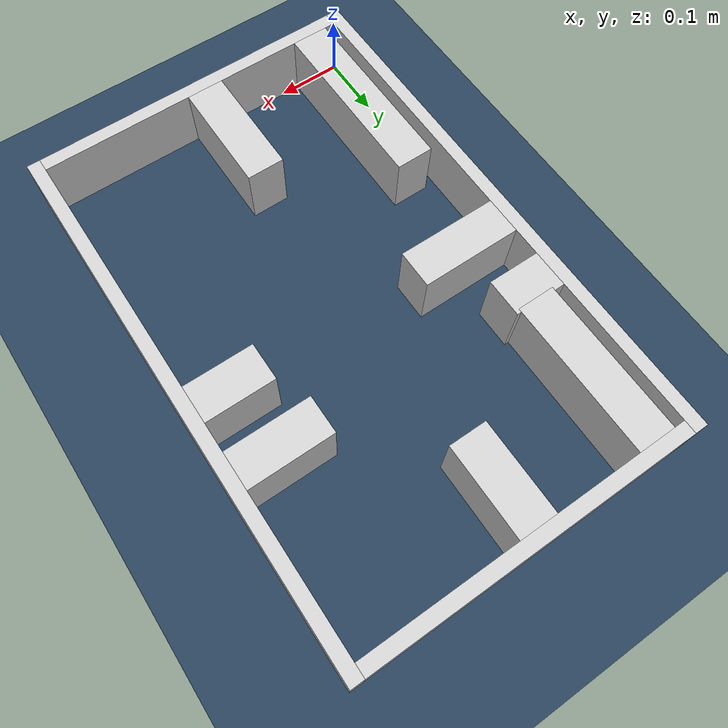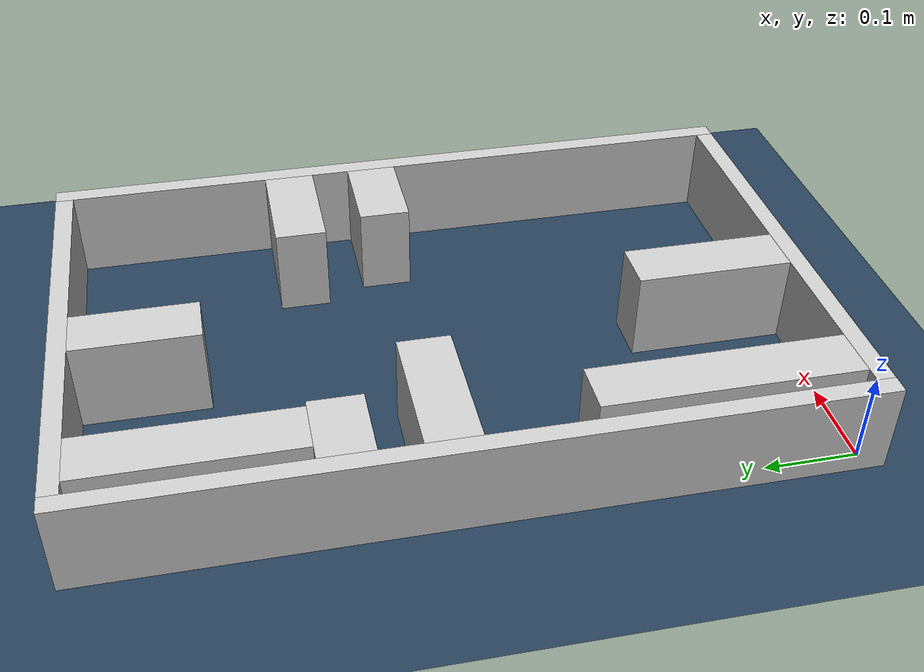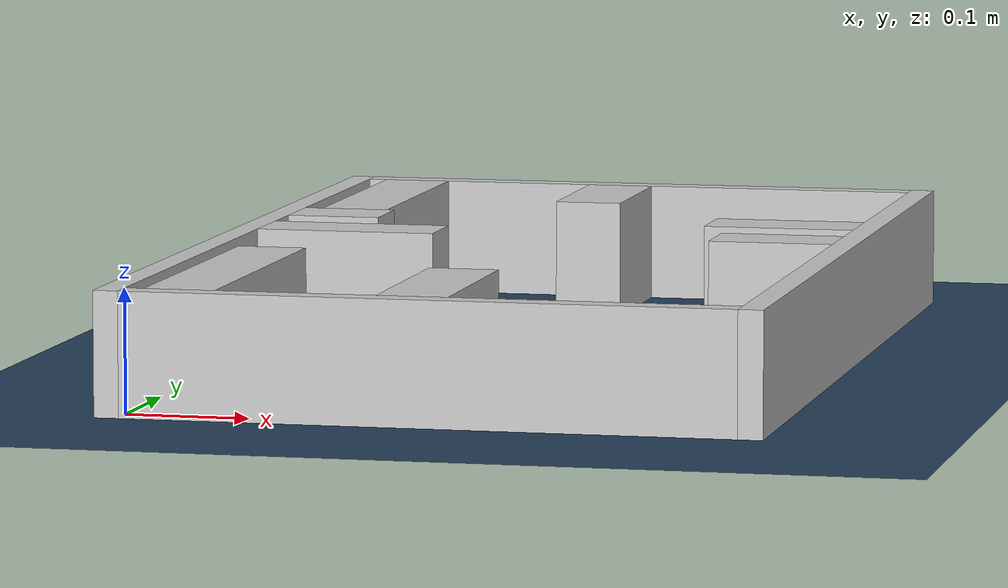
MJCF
<?xml version="1.0" ?>
<mujoco model="generated_real_template">
  <compiler angle="degree"/>
  <option timestep="0.002" integrator="implicitfast" iterations="100" cone="elliptic"/>
  <default>
    <geom density="1"/>
  </default>
  <asset>
    <texture builtin="gradient" height="3072" rgb1="0.3 0.5 0.7" rgb2="0 0 0" type="skybox" width="512"/>
    <texture builtin="checker" height="300" mark="edge" markrgb="0.8 0.8 0.8" name="groundplane" rgb1="0.2 0.3 0.4" rgb2="0.1 0.2 0.3" type="2d" width="300"/>
    <material name="groundplane" reflectance="0.2" texrepeat="5 5" texture="groundplane" texuniform="true"/>
  </asset>
  <worldbody>
    <light dir="0 0 -1" directional="true" pos="0 0 1.5"/>
    <geom name="floor" type="plane" condim="4" friction="0.5 0.005 0.001" material="groundplane" size="0 0 0.05"/>
    <body name="walls">
      <geom name="wall_boundary_left" type="box" condim="4" friction="1.0 0.005 0.0001" rgba="0.8 0.8 0.8 1" pos="-0.010000 0.387500 0.050000" euler="0 0 0.000000" size="0.010000 0.407500 0.050000"/>
      <geom name="wall_boundary_right" type="box" condim="4" friction="1.0 0.005 0.0001" rgba="0.8 0.8 0.8 1" pos="0.500000 0.387500 0.050000" euler="0 0 0.000000" size="0.010000 0.407500 0.050000"/>
      <geom name="wall_boundary_bottom" type="box" condim="4" friction="1.0 0.005 0.0001" rgba="0.8 0.8 0.8 1" pos="0.245000 -0.010000 0.050000" euler="0 0 0.000000" size="0.245000 0.010000 0.050000"/>
      <geom name="wall_boundary_top" type="box" condim="4" friction="1.0 0.005 0.0001" rgba="0.8 0.8 0.8 1" pos="0.245000 0.785000 0.050000" euler="0 0 0.000000" size="0.245000 0.010000 0.050000"/>
      <geom name="wall_inner_1_1" type="box" condim="4" friction="1.0 0.005 0.0001" rgba="0.8 0.8 0.8 1" pos="0.230575 0.086227 0.050000" euler="0 0 90.000000" size="0.086227 0.028500 0.050000"/>
      <geom name="wall_inner_1_2" type="box" condim="4" friction="1.0 0.005 0.0001" rgba="0.8 0.8 0.8 1" pos="0.230575 0.707102 0.050000" euler="0 0 90.000000" size="0.067898 0.028500 0.050000"/>
      <geom name="wall_inner_2_1" type="box" condim="4" friction="1.0 0.005 0.0001" rgba="0.8 0.8 0.8 1" pos="0.075610 0.420547 0.050000" euler="0 0 0.000000" size="0.075610 0.028500 0.050000"/>
      <geom name="wall_inner_2_2" type="box" condim="4" friction="1.0 0.005 0.0001" rgba="0.8 0.8 0.8 1" pos="0.438012 0.420547 0.050000" euler="0 0 0.000000" size="0.051988 0.028500 0.050000"/>
      <geom name="wall_inner_3_1" type="box" condim="4" friction="1.0 0.005 0.0001" rgba="0.8 0.8 0.8 1" pos="0.039632 0.520602 0.050000" euler="0 0 0.000000" size="0.039632 0.028500 0.050000"/>
      <geom name="wall_inner_3_2" type="box" condim="4" friction="1.0 0.005 0.0001" rgba="0.8 0.8 0.8 1" pos="0.426383 0.520602 0.050000" euler="0 0 0.000000" size="0.063617 0.028500 0.050000"/>
      <geom name="wall_inner_4_1" type="box" condim="4" friction="1.0 0.005 0.0001" rgba="0.8 0.8 0.8 1" pos="0.044307 0.137844 0.050000" euler="0 0 90.000000" size="0.137844 0.028500 0.050000"/>
      <geom name="wall_inner_4_2" type="box" condim="4" friction="1.0 0.005 0.0001" rgba="0.8 0.8 0.8 1" pos="0.044307 0.659314 0.050000" euler="0 0 90.000000" size="0.115686 0.028500 0.050000"/>
    </body>
  </worldbody>
</mujoco>
